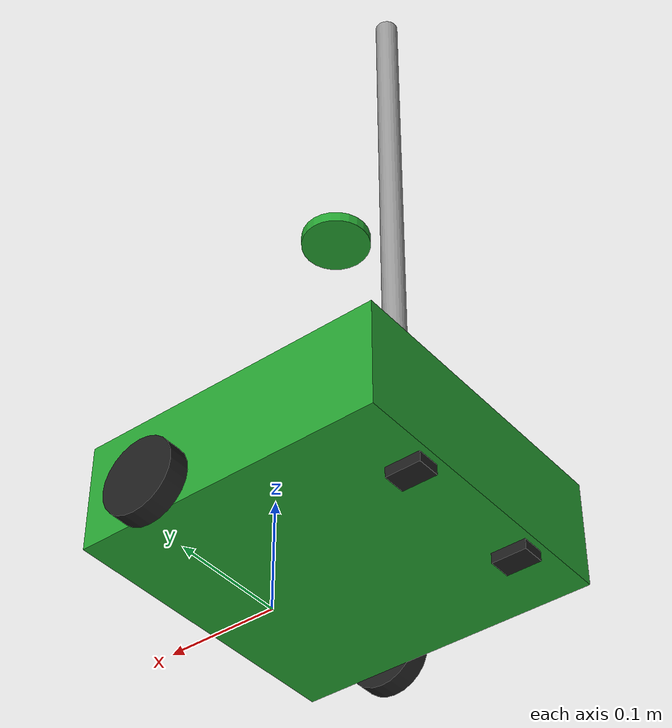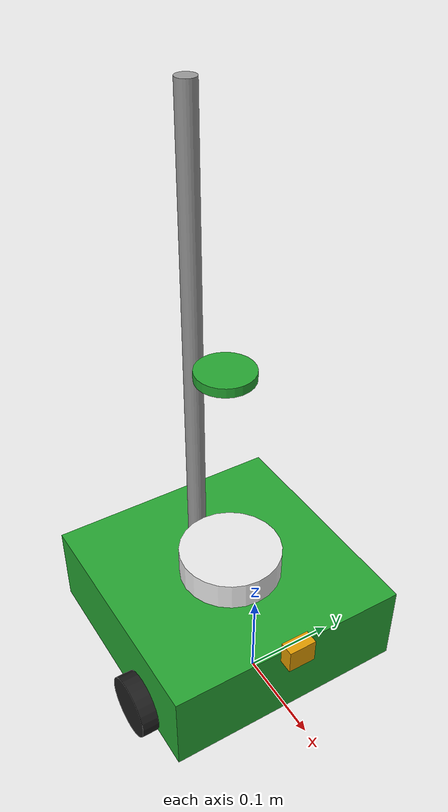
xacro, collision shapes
<?xml version="1.0" ?>
<robot name="turtlebot3_waffle_pi" xmlns:xacro="http://ros.org/wiki/xacro">
  <xacro:include filename="$(find robutler_description_23_24)/urdf/common_properties.xacro"/>
  <xacro:include filename="$(find robutler_description_23_24)/urdf/robutler.gazebo.xacro"/>

  <link name="base_footprint" />

  <joint name="base_joint" type="fixed">
    <parent link="base_footprint"/>
    <child link="base_link" />
    <origin xyz="0 0 0.010" rpy="0 0 0"/>
  </joint>

  <link name="base_link">
    <visual>
      <origin xyz="-0.064 0 0.0" rpy="0 0 0"/>
      <geometry>
        <mesh filename="package://turtlebot3_description/meshes/bases/waffle_pi_base.stl" scale="0.001 0.001 0.001"/>
      </geometry>
      <material name="green"/>
    </visual>

    <collision>
      <origin xyz="-0.064 0 0.047" rpy="0 0 0"/>
      <geometry>
        <box size="0.266 0.266 0.094"/>
      </geometry>
    </collision>

    <inertial>
      <origin xyz="0 0 0" rpy="0 0 0"/>
      <mass value="1.3729096e+00"/>
      <inertia ixx="8.7002718e-03" ixy="-4.7576583e-05" ixz="1.1160499e-04"
               iyy="8.6195418e-03" iyz="-3.5422299e-06"
               izz="1.4612727e-02" />
    </inertial>
  </link>

  <joint name="wheel_left_joint" type="continuous">
    <parent link="base_link"/>
    <child link="wheel_left_link"/>
    <origin xyz="0.0 0.144 0.023" rpy="-1.57 0 0"/>
    <axis xyz="0 0 1"/>
  </joint>

  <link name="wheel_left_link">
    <visual>
      <origin xyz="0 0 0" rpy="1.57 0 0"/>
      <geometry>
        <mesh filename="package://turtlebot3_description/meshes/wheels/left_tire.stl" scale="0.001 0.001 0.001"/>
      </geometry>
      <material name="dark"/>
    </visual>

    <collision>
      <origin xyz="0 0 0" rpy="0 0 0"/>
      <geometry>
        <cylinder length="0.018" radius="0.033"/>
      </geometry>
    </collision>

    <inertial>
      <origin xyz="0 0 0" />
      <mass value="2.8498940e-02" />
      <inertia ixx="1.1175580e-05" ixy="-4.2369783e-11" ixz="-5.9381719e-09"
               iyy="1.1192413e-05" iyz="-1.4400107e-11"
               izz="2.0712558e-05" />
      </inertial>
  </link>

  <joint name="wheel_right_joint" type="continuous">
    <parent link="base_link"/>
    <child link="wheel_right_link"/>
    <origin xyz="0.0 -0.144 0.023" rpy="-1.57 0 0"/>
    <axis xyz="0 0 1"/>
  </joint>

  <link name="wheel_right_link">
    <visual>
      <origin xyz="0 0 0" rpy="1.57 0 0"/>
      <geometry>
        <mesh filename="package://turtlebot3_description/meshes/wheels/right_tire.stl" scale="0.001 0.001 0.001"/>
      </geometry>
      <material name="dark"/>
    </visual>

    <collision>
      <origin xyz="0 0 0" rpy="0 0 0"/>
      <geometry>
        <cylinder length="0.018" radius="0.033"/>
      </geometry>
    </collision>

    <inertial>
      <origin xyz="0 0 0" />
      <mass value="2.8498940e-02" />
      <inertia ixx="1.1175580e-05" ixy="-4.2369783e-11" ixz="-5.9381719e-09"
               iyy="1.1192413e-05" iyz="-1.4400107e-11"
               izz="2.0712558e-05" />
      </inertial>
  </link>

  <joint name="caster_back_right_joint" type="fixed">
    <parent link="base_link"/>
    <child link="caster_back_right_link"/>
    <origin xyz="-0.177 -0.064 -0.004" rpy="-1.57 0 0"/>
  </joint>

  <link name="caster_back_right_link">
    <collision>
      <origin xyz="0 0.001 0" rpy="0 0 0"/>
      <geometry>
        <box size="0.030 0.009 0.020"/>
      </geometry>
    </collision>

    <inertial>
      <origin xyz="0 0 0" />
      <mass value="0.005" />
      <inertia ixx="0.001" ixy="0.0" ixz="0.0"
               iyy="0.001" iyz="0.0"
               izz="0.001" />
    </inertial>
  </link>

  <joint name="caster_back_left_joint" type="fixed">
    <parent link="base_link"/>
    <child link="caster_back_left_link"/>
    <origin xyz="-0.177 0.064 -0.004" rpy="-1.57 0 0"/>
  </joint>

  <link name="caster_back_left_link">
    <collision>
      <origin xyz="0 0.001 0" rpy="0 0 0"/>
      <geometry>
        <box size="0.030 0.009 0.020"/>
      </geometry>
    </collision>

    <inertial>
      <origin xyz="0 0 0" />
      <mass value="0.005" />
      <inertia ixx="0.001" ixy="0.0" ixz="0.0"
               iyy="0.001" iyz="0.0"
               izz="0.001" />
    </inertial>
  </link>

  <joint name="imu_joint" type="fixed">
    <parent link="base_link"/>
    <child link="imu_link"/>
    <origin xyz="0.0 0 0.068" rpy="0 0 0"/>
  </joint>

  <link name="imu_link"/>

  <joint name="scan_joint" type="fixed">
    <parent link="base_link"/>
    <child link="base_scan"/>
    <origin xyz="-0.064 0 0.122" rpy="0 0 0"/>
  </joint>

  <link name="base_scan">
    <visual>
      <origin xyz="0 0 0.0" rpy="0 0 0"/>
      <geometry>
        <mesh filename="package://turtlebot3_description/meshes/sensors/lds.stl" scale="0.001 0.001 0.001"/>
      </geometry>
      <material name="dark"/>
    </visual>

    <collision>
      <origin xyz="0.015 0 -0.0065" rpy="0 0 0"/>
      <geometry>
        <cylinder length="0.0315" radius="0.055"/>
      </geometry>
    </collision>

    <inertial>
      <mass value="0.114" />
      <origin xyz="0 0 0" />
      <inertia ixx="0.001" ixy="0.0" ixz="0.0"
               iyy="0.001" iyz="0.0"
               izz="0.001" />
    </inertial>
  </link>

  <joint name="camera_joint" type="fixed">
    <origin xyz="0.073 -0.011 0.084" rpy="0 0 0"/>
    <parent link="base_link"/>
    <child link="camera_link"/>
  </joint>

  <link name="camera_link">
    <collision>
      <origin xyz="0.005 0.011 0.013" rpy="0 0 0"/>
      <geometry>
        <box size="0.015 0.030 0.027"/>
      </geometry>
    </collision>
  </link>

  <link name="new_camera_link">
    <visual>
      <origin xyz="-0.06 0 0.0" rpy="0 0 0"/>
      <geometry>
        <cylinder length="0.5" radius="0.01"/>
      </geometry>
      <material name="dark"/>
    </visual>

    <collision>
      <origin xyz="-0.06 0 0.0" rpy="0 0 0"/>
      <geometry>
        <cylinder length="0.5" radius="0.01"/>
      </geometry>
    </collision>
  </link>

  <joint name="new_camera_joint" type="fixed">
    <origin xyz="-0.06 0 0.34" rpy="0 0 0"/>
    <parent link="base_link"/>
    <child link="new_camera_link"/>
  </joint>

   <link name="new_camera_base_link">
    <visual>
      <origin xyz="-0.06 0 0.25" rpy="0 0 0"/>
      <geometry>
        <cylinder length="0.01" radius="0.03"/>
      </geometry>
      <material name="green"/>
    </visual>

    <collision>
      <origin xyz="0 0 0.0" rpy="0 0 0"/>
      <geometry>
        <cylinder length="0.01" radius="0.03"/>
      </geometry>
    </collision>
  </link>

  <joint name="new_camera_base_joint" type="fixed">
    <origin xyz="0 0 0.005" rpy="0 0 0"/>
    <parent link="new_camera_link"/>
    <child link="new_camera_base_link"/>
  </joint>

  <joint name="new_camera_rgb_joint" type="fixed">
    <origin xyz="-0.06 0 0.6" rpy="0 0 0"/>
    <parent link="new_camera_base_link"/>
    <child link="camera_rgb_frame2"/>
  </joint>
  <link name="camera_rgb_frame2"/>

  <joint name="new_camera_rgb_optical_joint" type="fixed">
    <origin xyz="0 0 0" rpy="-1.57 0 -1.57"/>
    <parent link="camera_rgb_frame2"/>
    <child link="camera_rgb_optical_frame2"/>
  </joint>
  <link name="camera_rgb_optical_frame2"/>

  <joint name="camera_rgb_joint" type="fixed">
    <origin xyz="-0.06 0 0.6" rpy="0 0 3.14"/>
    <parent link="new_camera_base_link"/>
    <child link="camera_rgb_frame"/>
  </joint>
  <link name="camera_rgb_frame"/>

  <joint name="camera_rgb_optical_joint" type="fixed">
    <origin xyz="0 0 0" rpy="-1.57 0 -1.57"/>
    <parent link="camera_rgb_frame"/>
    <child link="camera_rgb_optical_frame"/>
  </joint>
  <link name="camera_rgb_optical_frame"/>

</robot>
